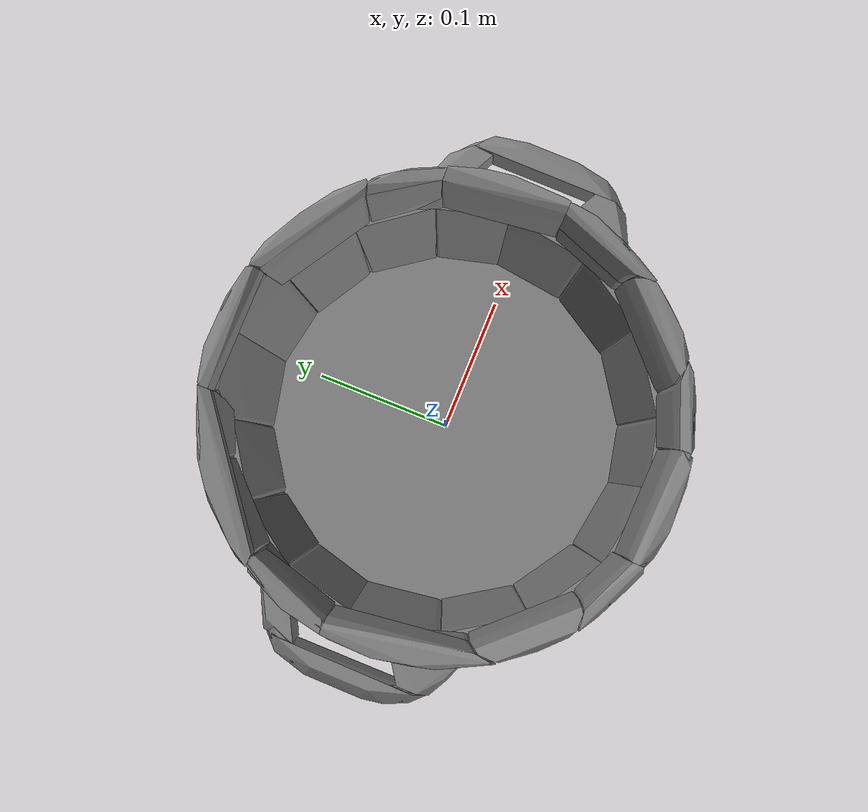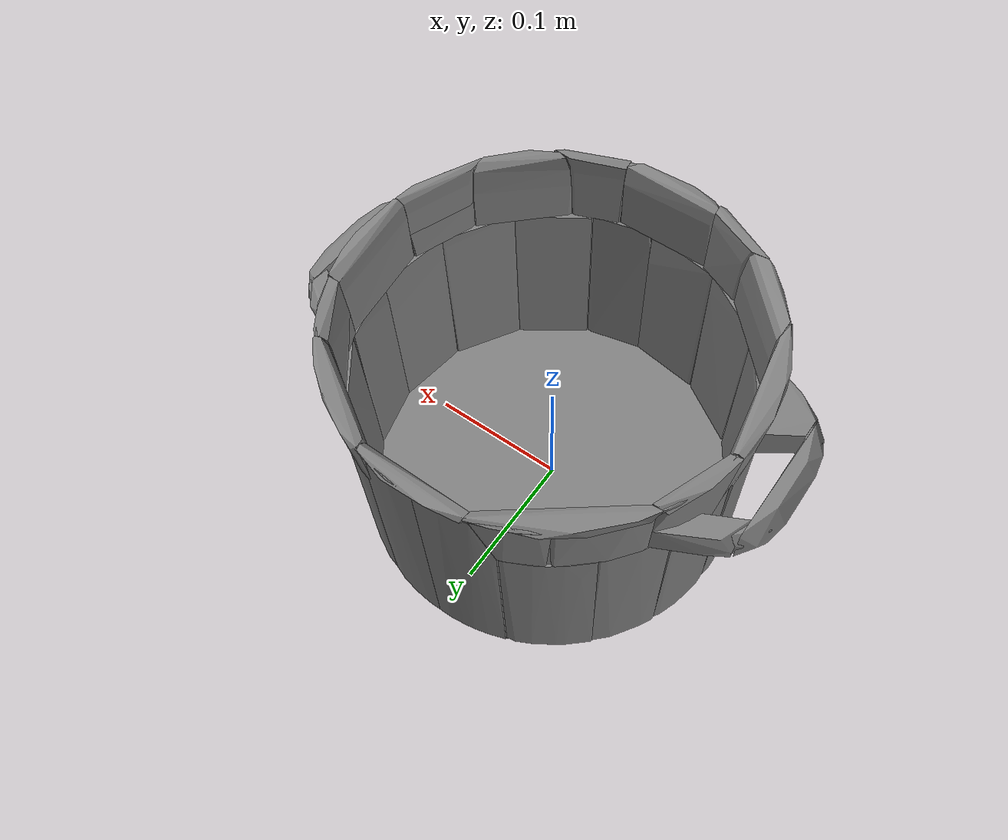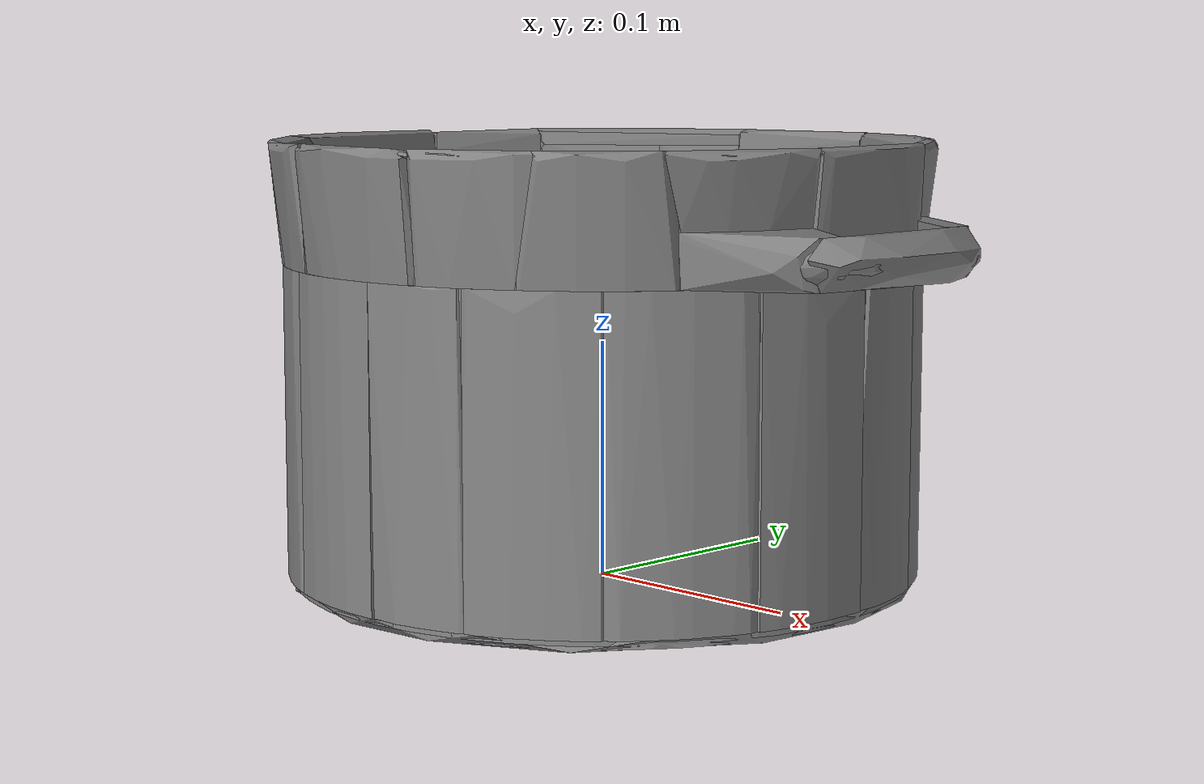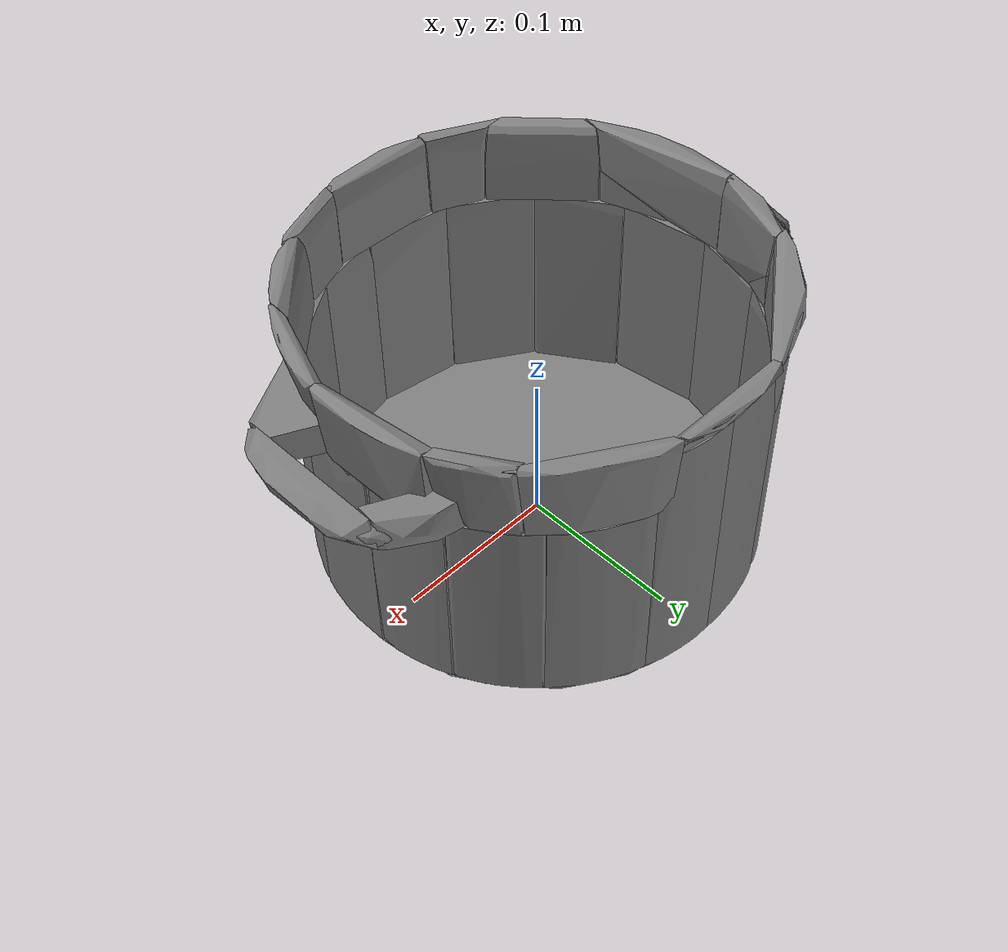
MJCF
<mujoco model="pot1">
  <asset>
    <mesh file="../../meshes/train/pot1/simple_mesh.stl" name="pot1_mesh" scale="1 1 1"/>
    <mesh file="../../meshes/train/pot1/pot1_hull_1.stl" name="pot1_hull_mesh_1" scale="1 1 1"/>
    <mesh file="../../meshes/train/pot1/pot1_hull_2.stl" name="pot1_hull_mesh_2" scale="1 1 1"/>
    <mesh file="../../meshes/train/pot1/pot1_hull_3.stl" name="pot1_hull_mesh_3" scale="1 1 1"/>
    <mesh file="../../meshes/train/pot1/pot1_hull_4.stl" name="pot1_hull_mesh_4" scale="1 1 1"/>
    <mesh file="../../meshes/train/pot1/pot1_hull_5.stl" name="pot1_hull_mesh_5" scale="1 1 1"/>
    <mesh file="../../meshes/train/pot1/pot1_hull_6.stl" name="pot1_hull_mesh_6" scale="1 1 1"/>
    <mesh file="../../meshes/train/pot1/pot1_hull_7.stl" name="pot1_hull_mesh_7" scale="1 1 1"/>
    <mesh file="../../meshes/train/pot1/pot1_hull_8.stl" name="pot1_hull_mesh_8" scale="1 1 1"/>
    <mesh file="../../meshes/train/pot1/pot1_hull_9.stl" name="pot1_hull_mesh_9" scale="1 1 1"/>
    <mesh file="../../meshes/train/pot1/pot1_hull_10.stl" name="pot1_hull_mesh_10" scale="1 1 1"/>
    <mesh file="../../meshes/train/pot1/pot1_hull_11.stl" name="pot1_hull_mesh_11" scale="1 1 1"/>
    <mesh file="../../meshes/train/pot1/pot1_hull_12.stl" name="pot1_hull_mesh_12" scale="1 1 1"/>
    <mesh file="../../meshes/train/pot1/pot1_hull_13.stl" name="pot1_hull_mesh_13" scale="1 1 1"/>
    <mesh file="../../meshes/train/pot1/pot1_hull_14.stl" name="pot1_hull_mesh_14" scale="1 1 1"/>
    <mesh file="../../meshes/train/pot1/pot1_hull_15.stl" name="pot1_hull_mesh_15" scale="1 1 1"/>
    <mesh file="../../meshes/train/pot1/pot1_hull_16.stl" name="pot1_hull_mesh_16" scale="1 1 1"/>
    <mesh file="../../meshes/train/pot1/pot1_hull_17.stl" name="pot1_hull_mesh_17" scale="1 1 1"/>
    <mesh file="../../meshes/train/pot1/pot1_hull_18.stl" name="pot1_hull_mesh_18" scale="1 1 1"/>
    <mesh file="../../meshes/train/pot1/pot1_hull_19.stl" name="pot1_hull_mesh_19" scale="1 1 1"/>
    <mesh file="../../meshes/train/pot1/pot1_hull_20.stl" name="pot1_hull_mesh_20" scale="1 1 1"/>
    <mesh file="../../meshes/train/pot1/pot1_hull_21.stl" name="pot1_hull_mesh_21" scale="1 1 1"/>
    <mesh file="../../meshes/train/pot1/pot1_hull_22.stl" name="pot1_hull_mesh_22" scale="1 1 1"/>
    <mesh file="../../meshes/train/pot1/pot1_hull_23.stl" name="pot1_hull_mesh_23" scale="1 1 1"/>
    <mesh file="../../meshes/train/pot1/pot1_hull_24.stl" name="pot1_hull_mesh_24" scale="1 1 1"/>
    <mesh file="../../meshes/train/pot1/pot1_hull_25.stl" name="pot1_hull_mesh_25" scale="1 1 1"/>
    <mesh file="../../meshes/train/pot1/pot1_hull_26.stl" name="pot1_hull_mesh_26" scale="1 1 1"/>
    <mesh file="../../meshes/train/pot1/pot1_hull_27.stl" name="pot1_hull_mesh_27" scale="1 1 1"/>
    <mesh file="../../meshes/train/pot1/pot1_hull_28.stl" name="pot1_hull_mesh_28" scale="1 1 1"/>
    <mesh file="../../meshes/train/pot1/pot1_hull_29.stl" name="pot1_hull_mesh_29" scale="1 1 1"/>
    <mesh file="../../meshes/train/pot1/pot1_hull_30.stl" name="pot1_hull_mesh_30" scale="1 1 1"/>
    <mesh file="../../meshes/train/pot1/pot1_hull_31.stl" name="pot1_hull_mesh_31" scale="1 1 1"/>
    <mesh file="../../meshes/train/pot1/pot1_hull_32.stl" name="pot1_hull_mesh_32" scale="1 1 1"/>
    <mesh file="../../meshes/train/pot1/pot1_hull_33.stl" name="pot1_hull_mesh_33" scale="1 1 1"/>
    <mesh file="../../meshes/train/pot1/pot1_hull_34.stl" name="pot1_hull_mesh_34" scale="1 1 1"/>
    <mesh file="../../meshes/train/pot1/pot1_hull_35.stl" name="pot1_hull_mesh_35" scale="1 1 1"/>
    <mesh file="../../meshes/train/pot1/pot1_hull_36.stl" name="pot1_hull_mesh_36" scale="1 1 1"/>
    <mesh file="../../meshes/train/pot1/pot1_hull_37.stl" name="pot1_hull_mesh_37" scale="1 1 1"/>
    <mesh file="../../meshes/train/pot1/pot1_hull_38.stl" name="pot1_hull_mesh_38" scale="1 1 1"/>
  </asset>
  <worldbody>
    <body>
      <body name="object">
        <geom pos="0 0 0" mesh="pot1_mesh" type="mesh" contype="0" conaffinity="0" group="1"/>
        <geom pos="0 0 0" mesh="pot1_hull_mesh_1" type="mesh" margin="0.002" solimp="0.998 0.998 0.001" solref="0.001 1" density="2000" friction="0.95 0.3 0.1" group="0" condim="4"/>
        <geom pos="0 0 0" mesh="pot1_hull_mesh_2" type="mesh" margin="0.002" solimp="0.998 0.998 0.001" solref="0.001 1" density="2000" friction="0.95 0.3 0.1" group="0" condim="4"/>
        <geom pos="0 0 0" mesh="pot1_hull_mesh_3" type="mesh" margin="0.002" solimp="0.998 0.998 0.001" solref="0.001 1" density="2000" friction="0.95 0.3 0.1" group="0" condim="4"/>
        <geom pos="0 0 0" mesh="pot1_hull_mesh_4" type="mesh" margin="0.002" solimp="0.998 0.998 0.001" solref="0.001 1" density="2000" friction="0.95 0.3 0.1" group="0" condim="4"/>
        <geom pos="0 0 0" mesh="pot1_hull_mesh_5" type="mesh" margin="0.002" solimp="0.998 0.998 0.001" solref="0.001 1" density="2000" friction="0.95 0.3 0.1" group="0" condim="4"/>
        <geom pos="0 0 0" mesh="pot1_hull_mesh_6" type="mesh" margin="0.002" solimp="0.998 0.998 0.001" solref="0.001 1" density="2000" friction="0.95 0.3 0.1" group="0" condim="4"/>
        <geom pos="0 0 0" mesh="pot1_hull_mesh_7" type="mesh" margin="0.002" solimp="0.998 0.998 0.001" solref="0.001 1" density="2000" friction="0.95 0.3 0.1" group="0" condim="4"/>
        <geom pos="0 0 0" mesh="pot1_hull_mesh_8" type="mesh" margin="0.002" solimp="0.998 0.998 0.001" solref="0.001 1" density="2000" friction="0.95 0.3 0.1" group="0" condim="4"/>
        <geom pos="0 0 0" mesh="pot1_hull_mesh_9" type="mesh" margin="0.002" solimp="0.998 0.998 0.001" solref="0.001 1" density="2000" friction="0.95 0.3 0.1" group="0" condim="4"/>
        <geom pos="0 0 0" mesh="pot1_hull_mesh_10" type="mesh" margin="0.002" solimp="0.998 0.998 0.001" solref="0.001 1" density="2000" friction="0.95 0.3 0.1" group="0" condim="4"/>
        <geom pos="0 0 0" mesh="pot1_hull_mesh_11" type="mesh" margin="0.002" solimp="0.998 0.998 0.001" solref="0.001 1" density="2000" friction="0.95 0.3 0.1" group="0" condim="4"/>
        <geom pos="0 0 0" mesh="pot1_hull_mesh_12" type="mesh" margin="0.002" solimp="0.998 0.998 0.001" solref="0.001 1" density="2000" friction="0.95 0.3 0.1" group="0" condim="4"/>
        <geom pos="0 0 0" mesh="pot1_hull_mesh_13" type="mesh" margin="0.002" solimp="0.998 0.998 0.001" solref="0.001 1" density="2000" friction="0.95 0.3 0.1" group="0" condim="4"/>
        <geom pos="0 0 0" mesh="pot1_hull_mesh_14" type="mesh" margin="0.002" solimp="0.998 0.998 0.001" solref="0.001 1" density="2000" friction="0.95 0.3 0.1" group="0" condim="4"/>
        <geom pos="0 0 0" mesh="pot1_hull_mesh_15" type="mesh" margin="0.002" solimp="0.998 0.998 0.001" solref="0.001 1" density="2000" friction="0.95 0.3 0.1" group="0" condim="4"/>
        <geom pos="0 0 0" mesh="pot1_hull_mesh_16" type="mesh" margin="0.002" solimp="0.998 0.998 0.001" solref="0.001 1" density="2000" friction="0.95 0.3 0.1" group="0" condim="4"/>
        <geom pos="0 0 0" mesh="pot1_hull_mesh_17" type="mesh" margin="0.002" solimp="0.998 0.998 0.001" solref="0.001 1" density="2000" friction="0.95 0.3 0.1" group="0" condim="4"/>
        <geom pos="0 0 0" mesh="pot1_hull_mesh_18" type="mesh" margin="0.002" solimp="0.998 0.998 0.001" solref="0.001 1" density="2000" friction="0.95 0.3 0.1" group="0" condim="4"/>
        <geom pos="0 0 0" mesh="pot1_hull_mesh_19" type="mesh" margin="0.002" solimp="0.998 0.998 0.001" solref="0.001 1" density="2000" friction="0.95 0.3 0.1" group="0" condim="4"/>
        <geom pos="0 0 0" mesh="pot1_hull_mesh_20" type="mesh" margin="0.002" solimp="0.998 0.998 0.001" solref="0.001 1" density="2000" friction="0.95 0.3 0.1" group="0" condim="4"/>
        <geom pos="0 0 0" mesh="pot1_hull_mesh_21" type="mesh" margin="0.002" solimp="0.998 0.998 0.001" solref="0.001 1" density="2000" friction="0.95 0.3 0.1" group="0" condim="4"/>
        <geom pos="0 0 0" mesh="pot1_hull_mesh_22" type="mesh" margin="0.002" solimp="0.998 0.998 0.001" solref="0.001 1" density="2000" friction="0.95 0.3 0.1" group="0" condim="4"/>
        <geom pos="0 0 0" mesh="pot1_hull_mesh_23" type="mesh" margin="0.002" solimp="0.998 0.998 0.001" solref="0.001 1" density="2000" friction="0.95 0.3 0.1" group="0" condim="4"/>
        <geom pos="0 0 0" mesh="pot1_hull_mesh_24" type="mesh" margin="0.002" solimp="0.998 0.998 0.001" solref="0.001 1" density="2000" friction="0.95 0.3 0.1" group="0" condim="4"/>
        <geom pos="0 0 0" mesh="pot1_hull_mesh_25" type="mesh" margin="0.002" solimp="0.998 0.998 0.001" solref="0.001 1" density="2000" friction="0.95 0.3 0.1" group="0" condim="4"/>
        <geom pos="0 0 0" mesh="pot1_hull_mesh_26" type="mesh" margin="0.002" solimp="0.998 0.998 0.001" solref="0.001 1" density="2000" friction="0.95 0.3 0.1" group="0" condim="4"/>
        <geom pos="0 0 0" mesh="pot1_hull_mesh_27" type="mesh" margin="0.002" solimp="0.998 0.998 0.001" solref="0.001 1" density="2000" friction="0.95 0.3 0.1" group="0" condim="4"/>
        <geom pos="0 0 0" mesh="pot1_hull_mesh_28" type="mesh" margin="0.002" solimp="0.998 0.998 0.001" solref="0.001 1" density="2000" friction="0.95 0.3 0.1" group="0" condim="4"/>
        <geom pos="0 0 0" mesh="pot1_hull_mesh_29" type="mesh" margin="0.002" solimp="0.998 0.998 0.001" solref="0.001 1" density="2000" friction="0.95 0.3 0.1" group="0" condim="4"/>
        <geom pos="0 0 0" mesh="pot1_hull_mesh_30" type="mesh" margin="0.002" solimp="0.998 0.998 0.001" solref="0.001 1" density="2000" friction="0.95 0.3 0.1" group="0" condim="4"/>
        <geom pos="0 0 0" mesh="pot1_hull_mesh_31" type="mesh" margin="0.002" solimp="0.998 0.998 0.001" solref="0.001 1" density="2000" friction="0.95 0.3 0.1" group="0" condim="4"/>
        <geom pos="0 0 0" mesh="pot1_hull_mesh_32" type="mesh" margin="0.002" solimp="0.998 0.998 0.001" solref="0.001 1" density="2000" friction="0.95 0.3 0.1" group="0" condim="4"/>
        <geom pos="0 0 0" mesh="pot1_hull_mesh_33" type="mesh" margin="0.002" solimp="0.998 0.998 0.001" solref="0.001 1" density="2000" friction="0.95 0.3 0.1" group="0" condim="4"/>
        <geom pos="0 0 0" mesh="pot1_hull_mesh_34" type="mesh" margin="0.002" solimp="0.998 0.998 0.001" solref="0.001 1" density="2000" friction="0.95 0.3 0.1" group="0" condim="4"/>
        <geom pos="0 0 0" mesh="pot1_hull_mesh_35" type="mesh" margin="0.002" solimp="0.998 0.998 0.001" solref="0.001 1" density="2000" friction="0.95 0.3 0.1" group="0" condim="4"/>
        <geom pos="0 0 0" mesh="pot1_hull_mesh_36" type="mesh" margin="0.002" solimp="0.998 0.998 0.001" solref="0.001 1" density="2000" friction="0.95 0.3 0.1" group="0" condim="4"/>
        <geom pos="0 0 0" mesh="pot1_hull_mesh_37" type="mesh" margin="0.002" solimp="0.998 0.998 0.001" solref="0.001 1" density="2000" friction="0.95 0.3 0.1" group="0" condim="4"/>
        <geom pos="0 0 0" mesh="pot1_hull_mesh_38" type="mesh" margin="0.002" solimp="0.998 0.998 0.001" solref="0.001 1" density="2000" friction="0.95 0.3 0.1" group="0" condim="4"/>
      </body>
      <site rgba="0 0 0 0" size="0.005" pos="0 0 -0.001" name="bottom_site"/>
      <site rgba="0 0 0 0" size="0.005" pos="0 0 0.02" name="top_site"/>
      <site rgba="0 0 0 0" size="0.005" pos="0.0375 0.02 0" name="horizontal_radius_site"/>
    </body>
  </worldbody>
</mujoco>
